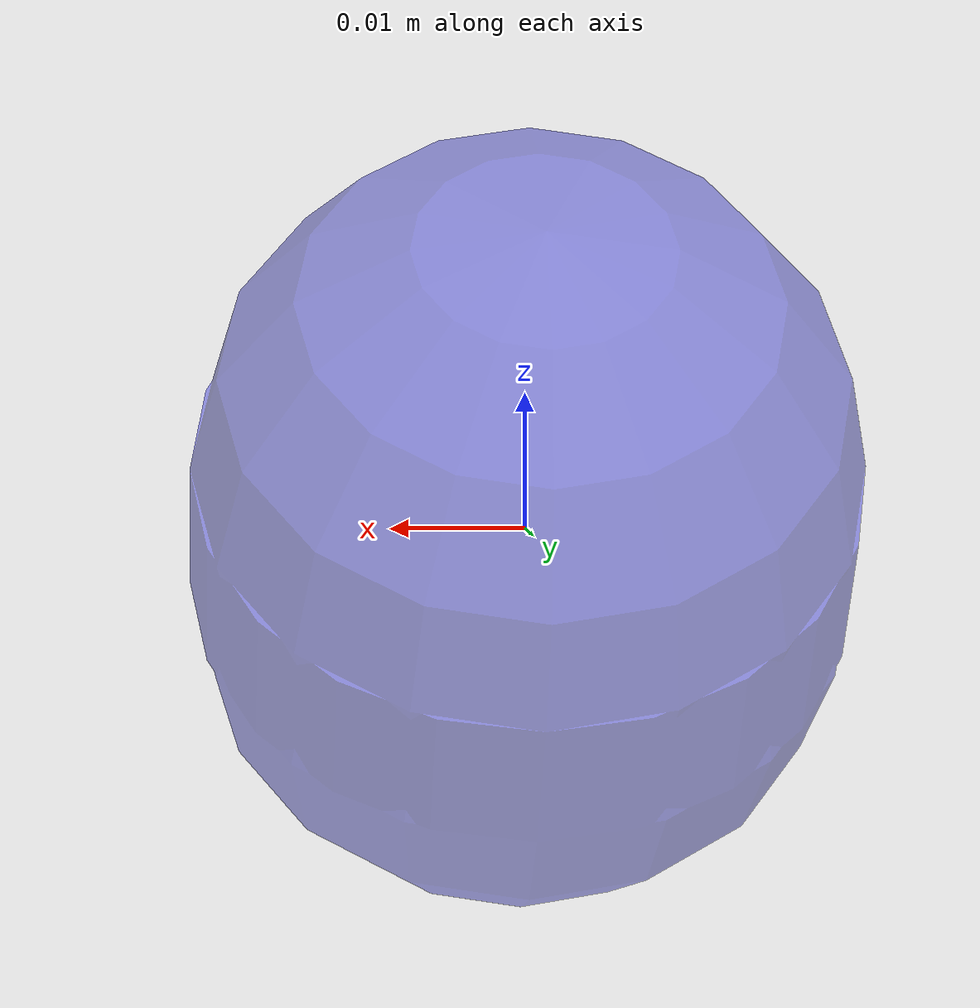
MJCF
<mujoco model="bread">
  <asset>
    <mesh file="meshes/bread.stl" name="bread_mesh" scale="0.8 0.8 0.8"/>
    <texture file="../textures/bread.png" type="2d" name="tex-bread"/>
    <material name="bread" reflectance="0.7" texrepeat="15 15" texture="tex-bread" texuniform="true"/>
  </asset>
  <worldbody>
    <body>
      <body name="object">
        <geom pos="0.000000 0.000408 0.000331" type="capsule" solimp="0.998 0.998 0.001" solref="0.001 1" density="50" friction="0.95 0.3 0.1" material="bread" group="0" condim="4" quat="0.921662 -0.387994 0.000000 0.000000" size="0.024744 0.006334" rgba="0.2 0.2 0.8 0.5"/>
      </body>
      <site rgba="0 0 0 0" size="0.005" pos="0 0 -0.045" name="bottom_site"/>
      <site rgba="0 0 0 0" size="0.005" pos="0 0 0.03" name="top_site"/>
      <site rgba="0 0 0 0" size="0.005" pos="0.03 0.03 0" name="horizontal_radius_site"/>
    </body>
  </worldbody>
</mujoco>
